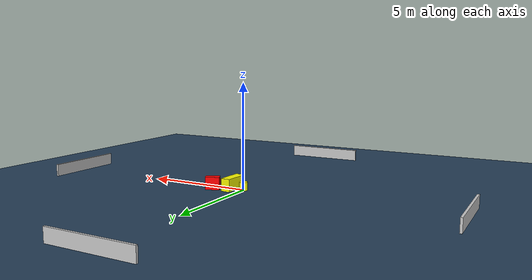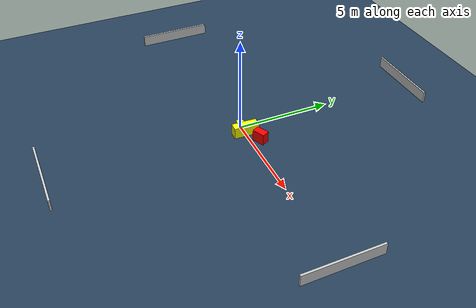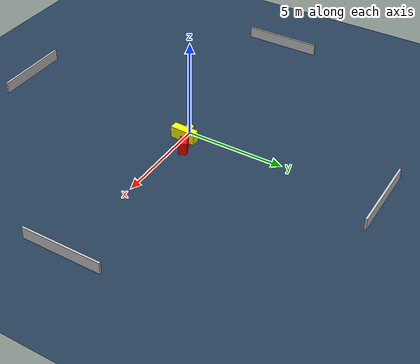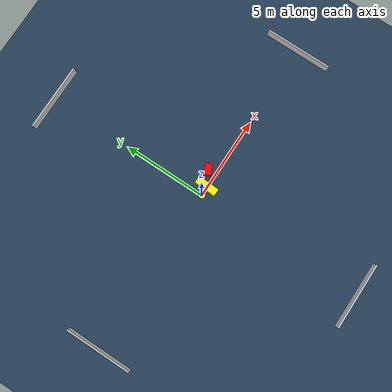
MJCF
<?xml version="1.0" ?>
<mujoco model="generated_environment">
  <option timestep="0.01" integrator="RK4" cone="elliptic"/>
  <default>
    <geom density="1"/>
  </default>
  <asset>
    <texture builtin="gradient" height="3072" name="skybox" rgb1="0.3 0.5 0.7" rgb2="0 0 0" type="skybox" width="512"/>
    <texture builtin="checker" height="300" name="groundplane" rgb1="0.2 0.3 0.4" rgb2="0.1 0.2 0.3" type="2d" width="300"/>
    <material name="groundplane" reflectance="0.2" texrepeat="5 5" texture="groundplane"/>
  </asset>
  <worldbody>
    <light dir="0 0 -1" directional="true" pos="0 0 1.5"/>
    <geom condim="3" friction="0.5 0.005 0.001" material="groundplane" name="floor" pos="0 0 0" size="0 0 0.05" type="plane"/>
    <body name="walls">
      <geom name="wall_1" condim="4" pos="-10.0 0.0 0.3" rgba="0.800000011920929 0.800000011920929 0.800000011920929 1.0" size="0.05 2.0 0.3" type="box"/>
      <geom name="wall_2" condim="4" pos="10.0 0.0 0.3" rgba="0.800000011920929 0.800000011920929 0.800000011920929 1.0" size="0.05 2.0 0.3" type="box"/>
      <geom name="wall_3" condim="4" pos="0.0 -10.0 0.3" rgba="0.800000011920929 0.800000011920929 0.800000011920929 1.0" size="2.0 0.05 0.3" type="box"/>
      <geom name="wall_4" condim="4" pos="0.0 10.0 0.3" rgba="0.800000011920929 0.800000011920929 0.800000011920929 1.0" size="2.0 0.05 0.3" type="box"/>
    </body>
    <body name="robot">
      <joint name="joint_x" type="slide" pos="0 0 0" axis="1 0 0"/>
      <joint name="joint_y" type="slide" pos="0 0 0" axis="0 1 0"/>
      <geom name="robot" type="cylinder" pos="0.0 0.0 0.2" size="0.2 0.2 0.0" mass="5.0" friction="1.0 0.005 0.0001" condim="4" rgba="1.0 1.0 0.0 1.0"/>
    </body>
    <body name="obstacle_1_movable">
      <geom name="obstacle_1_movable" condim="4" pos="0.5439458326024268 0.0338048333912836 0.3" euler="0 0 267.59199906255583" friction="0.0 0.005 0.001" rgba="1.0 1.0 0.0 1.0" size="0.6514668735361383 0.22347078334651382 0.3" type="box" mass="0.1"/>
      <joint type="free"/>
    </body>
    <body name="obstacle_2_static">
      <geom name="obstacle_2_static" condim="4" pos="1.3737156093015497 0.4921758167193304 0.3" euler="0 0 24.661572253676933" friction="0.0 0.005 0.001" rgba="1.0 0.0 0.0 1.0" size="0.3347233457907896 0.2007354262638116 0.3" type="box"/>
    </body>
  </worldbody>
  <actuator>
    <motor name="actuator_x" joint="joint_x" gear="1" ctrlrange="-1 1"/>
    <motor name="actuator_y" joint="joint_y" gear="1" ctrlrange="-1 1"/>
  </actuator>
</mujoco>
